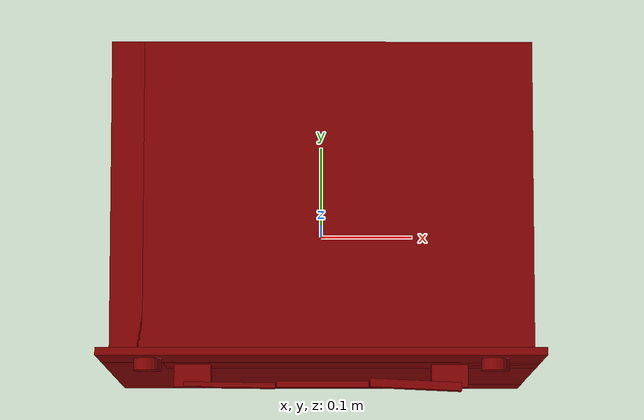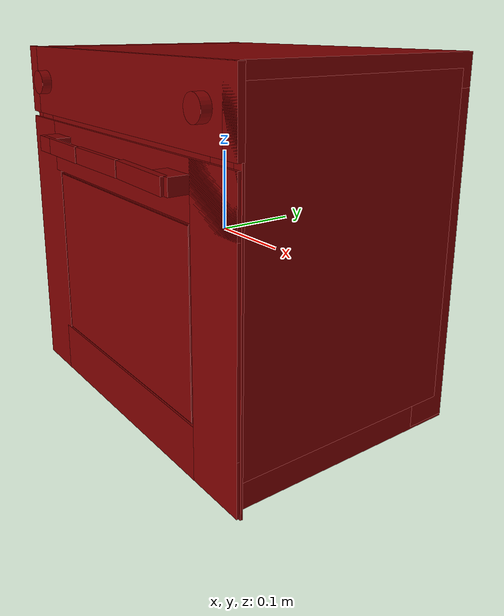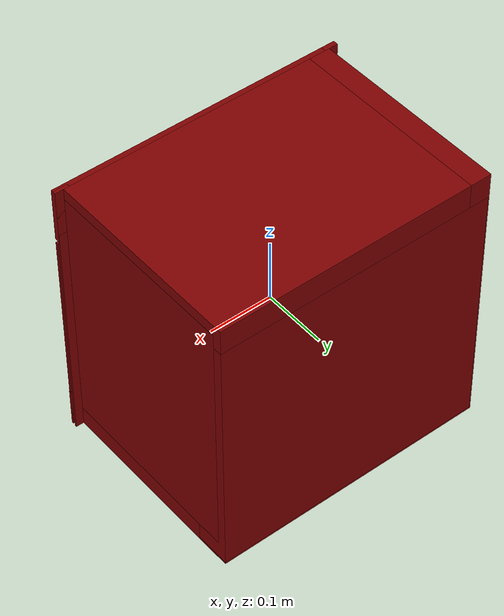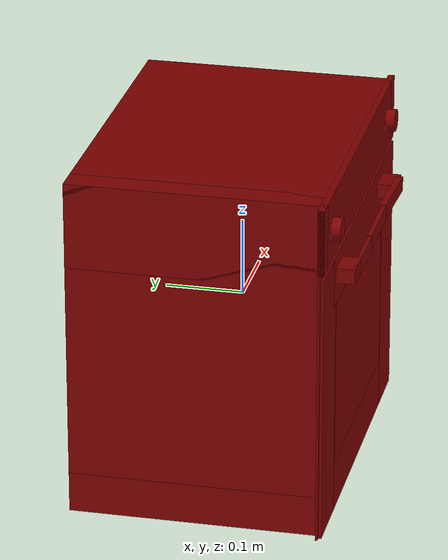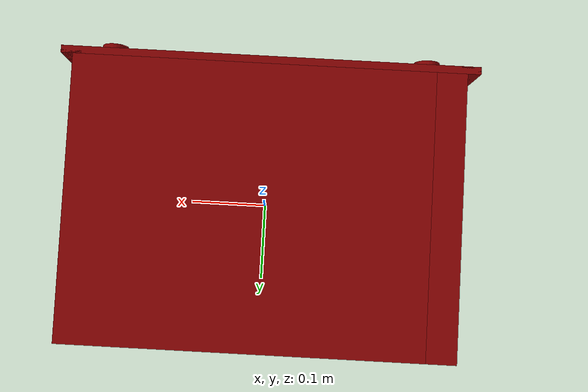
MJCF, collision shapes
<mujoco model="model">
  <compiler angle="radian"/>
  <asset>
    <mesh file="visuals/Body001.obj" name="Body001_vis"/>
    <mesh file="visuals/Door001.obj" name="Door001_vis"/>
    <mesh file="visuals/Door001_Clear.obj" name="Door001_Clear_vis"/>
    <mesh file="visuals/Knob001.obj" name="Knob001_vis"/>
    <mesh file="visuals/Knob002.obj" name="Knob002_vis"/>
    <mesh file="visuals/Shelf001.obj" name="Shelf001_vis"/>
    <mesh file="visuals/Shelf002.obj" name="Shelf002_vis"/>
    <texture file="visuals/T_BC001.png" name="Body001_material" type="2d"/>
    <material name="Body001_material" rgba="1 1 1 1.0" texture="Body001_material" shininess="0.4472135901451111" specular="2"/>
    <texture file="visuals/T_BC001.png" name="Door001_material" type="2d"/>
    <material name="Door001_material" rgba="1 1 1 1.0" texture="Door001_material" shininess="0.4472135901451111" specular="2"/>
    <texture file="visuals/T_BC001.png" name="Door001_Clear_material" type="2d"/>
    <material name="Door001_Clear_material" rgba="1 1 1 0.7562724351882935" texture="Door001_Clear_material" shininess="0.4472135901451111" specular="0.3103448502657381"/>
    <texture file="visuals/T_BC001.png" name="Knob001_material" type="2d"/>
    <material name="Knob001_material" rgba="1 1 1 1.0" texture="Knob001_material" shininess="0.4472135901451111" specular="0.3103448502657381"/>
    <texture file="visuals/T_BC001.png" name="Knob002_material" type="2d"/>
    <material name="Knob002_material" rgba="1 1 1 1.0" texture="Knob002_material" shininess="0.4472135901451111" specular="0.3103448502657381"/>
    <texture file="visuals/T_BC001.png" name="Shelf001_material" type="2d"/>
    <material name="Shelf001_material" rgba="1 1 1 1.0" texture="Shelf001_material" shininess="0.4472135901451111" specular="5"/>
    <texture file="visuals/T_BC001.png" name="Shelf002_material" type="2d"/>
    <material name="Shelf002_material" rgba="1 1 1 1.0" texture="Shelf002_material" shininess="0.4472135901451111" specular="5"/>
  </asset>
  <default>
    <default class="visual">
      <geom conaffinity="0" contype="0" group="1" type="mesh"/>
    </default>
    <default class="collision">
      <geom group="0" rgba="0.5 0 0 0.5"/>
    </default>
    <default class="spawn">
      <geom group="0" rgba="1 1 1 0.5" contype="0" conaffinity="0"/>
      <site group="0" rgba="1 1 1 0.5"/>
    </default>
    <default class="region">
      <geom group="1" conaffinity="0" contype="0" rgba="0 1 0 0"/>
    </default>
  </default>
  <worldbody>
    <body>
      <body name="object">
        <geom mesh="Body001_vis" type="mesh" solimp="0.998 0.998 0.001" solref="0.001 1" density="100" friction="0.95 0.3 0.1" class="visual" material="Body001_material"/>
        <geom class="collision" type="box" pos="0.000481 0.014818 -0.195920" size="0.21786123514175415 0.16036567091941833 0.026383837684988976" quat="1.0 0.0 0.0 0.0"/>
        <geom class="collision" type="box" pos="0.000481 0.014818 0.166861" size="0.21786123514175415 0.16036497056484222 0.055442389100790024" quat="1.0 0.0 0.0 0.0"/>
        <geom class="collision" type="box" pos="0.001381 0.147649 -0.018107" size="0.21696160733699799 0.027534758672118187 0.20136216282844543" quat="1.0 0.0 0.0 0.0"/>
        <geom class="collision" type="box" pos="0.200536 0.007853 0.006640" size="0.01780678518116474 0.1534004956483841 0.198159858584404" quat="1.0 0.0 0.0 0.0"/>
        <geom class="collision" type="box" pos="-0.200482 0.014818 0.000000" size="0.016898097470402718 0.1603657305240631 0.22230353951454163" quat="1.0 0.0 0.0 0.0"/>
        <geom class="collision" type="box" pos="-0.000254 -0.146839 0.179870" size="0.2318679541349411 0.0041035874746739864 0.042434122413396835" quat="1.0 0.0 0.0 0.0"/>
        <geom class="collision" type="box" pos="-0.221275 -0.146839 0.179870" size="0.010847033932805061 0.004103589337319136 0.042434122413396835" quat="1.0 0.0 0.0 0.0"/>
        <geom class="collision" type="box" pos="0.220378 -0.146839 0.179870" size="0.011236577294766903 0.004103591199964285 0.042434122413396835" quat="1.0 0.0 0.0 0.0"/>
        <geom class="collision" type="box" pos="0.220051 -0.144141 -0.036655" size="0.01090974360704422 0.001406339113600552 0.1853591799736023" quat="1.0 0.0 0.0 0.0"/>
        <geom class="collision" type="box" pos="-0.219866 -0.144141 -0.036655" size="0.01090974360704422 0.0014063393464311957 0.1853591799736023" quat="1.0 0.0 0.0 0.0"/>
        <body name="Door001">
          <joint axis="1.0 0.0 0.0" pos="-0.000299 -0.149308 -0.220501" limited="true" name="Door001_joint" range="0.0 1.15" type="hinge" damping="5" frictionloss="1" armature=".01" stiffness="0.05" springref="-0.1"/>
          <geom mesh="Door001_vis" type="mesh" solimp="0.998 0.998 0.001" solref="0.001 1" density="100" friction="0.95 0.3 0.1" class="visual" material="Door001_material"/>
          <geom class="collision" type="box" pos="-0.097983 -0.172834 0.105864" size="0.0487707294523716 0.0025828531943261623 0.009635950438678265" quat="0.9999805688858032 0.0 -0.0 -0.006229714956134558"/>
          <geom class="collision" type="box" pos="0.100252 -0.172441 0.105864" size="0.04882834851741791 0.004376294557005167 0.00963595137000084" quat="0.9997330904006958 0.0 -0.0 -0.02310282737016678"/>
          <geom class="collision" type="box" pos="0.001050 -0.172154 0.105864" size="0.048756614327430725 0.003030058229342103 0.00963595137000084" quat="1.0 0.0 0.0 0.0"/>
          <geom class="collision" type="box" pos="-0.136938 -0.162183 0.105864" size="0.01957026682794094 0.01288915891200304 0.009635921567678452" quat="1.0 0.0 0.0 0.0"/>
          <geom class="collision" type="box" pos="0.136118 -0.163308 0.105864" size="0.019453901797533035 0.011863337829709053 0.009635918773710728" quat="1.0 0.0 0.0 0.0"/>
          <geom class="collision" type="box" pos="-0.193693 -0.149141 -0.043532" size="0.0384288989007473 0.0018013834487646818 0.17441776394844055" quat="1.0 0.0 0.0 0.0"/>
          <geom class="collision" type="box" pos="0.193256 -0.149141 -0.043532" size="0.0384288989007473 0.0018013825174421072 0.17441776394844055" quat="1.0 0.0 0.0 0.0"/>
          <geom class="collision" type="box" pos="0.032302 -0.149141 0.098949" size="0.19938355684280396 0.0018013815861195326 0.03193708509206772" quat="1.0 0.0 0.0 0.0"/>
          <geom class="collision" type="box" pos="0.032738 -0.149141 -0.185705" size="0.19938355684280396 0.0018013805383816361 0.032244838774204254" quat="1.0 0.0 0.0 0.0"/>
          <geom class="collision" type="box" pos="-0.000475 -0.149141 -0.043107" size="0.15161040425300598 0.0018013796070590615 0.10714123398065567" quat="1.0 0.0 0.0 0.0"/>
          <body name="Door001_Clear">
            <geom mesh="Door001_Clear_vis" type="mesh" solimp="0.998 0.998 0.001" solref="0.001 1" density="100" friction="0.95 0.3 0.1" class="visual" material="Door001_Clear_material"/>
            <geom class="collision" type="box" pos="-0.000859 -0.148667 -0.043332" size="0.1520240604877472 0.001343670068308711 0.10845881700515747" quat="1.0 0.0 0.0 0.0"/>
          </body>
        </body>
        <body name="Knob001">
          <joint axis="0.0 1.0 0.0" pos="-0.180147 -0.160576 0.179097" limited="true" name="Knob001_joint" range="0.0 5.096361415823442" type="hinge" damping="0.05" armature="0.001"/>
          <geom mesh="Knob001_vis" type="mesh" solimp="0.998 0.998 0.001" solref="0.001 1" density="100" friction="0.95 0.3 0.1" class="visual" material="Knob001_material"/>
          <geom class="collision" type="cylinder" pos="-0.180273 -0.157186 0.178873" size="0.014560258947312832 0.0060626002959907055" quat="0.7071067094802856 0.7071068286895752 0.0 0.0"/>
        </body>
        <body name="Knob002">
          <joint axis="0.0 -1.0 0.0" pos="0.180246 -0.160569 0.179843" limited="true" name="Knob002_joint" range="-1.0471975511965976 3.141592653589793" type="hinge" damping="0.05" armature="0.001"/>
          <geom mesh="Knob002_vis" type="mesh" solimp="0.998 0.998 0.001" solref="0.001 1" density="100" friction="0.95 0.3 0.1" class="visual" material="Knob002_material"/>
          <geom class="collision" type="cylinder" pos="0.180386 -0.157186 0.180103" size="0.014560258947312832 0.0060626002959907055" quat="0.7071067094802856 0.7071068286895752 0.0 0.0"/>
        </body>
        <body name="Shelf001">
          <joint axis="0.0 -1.0 0.0" pos="0.001739 -0.006551 -0.090752" limited="true" name="Shelf001_joint" range="0.0 0.15" type="slide" damping="1" frictionloss="1" armature=".01" stiffness="0.05"/>
          <geom mesh="Shelf001_vis" type="mesh" solimp="0.998 0.998 0.001" solref="0.001 1" density="100" friction="0.95 0.3 0.1" class="visual" material="Shelf001_material"/>
          <geom class="collision" type="box" pos="-0.000379 -0.005369 -0.093415" size="0.15719912946224213 0.11320768296718597 0.0028579707723110914" quat="1.0 0.0 0.0 0.0"/>
          <geom class="collision" type="box" pos="0.171002 -0.004984 -0.083480" size="0.006573982071131468 0.11217103153467178 0.0016717874677851796" quat="1.0 0.0 0.0 0.0"/>
          <geom class="collision" type="box" pos="0.161391 -0.004984 -0.088838" size="0.006573961582034826 0.11217070370912552 0.0016717874677851796" quat="0.9005489349365234 0.0 -0.4347546398639679 0.0"/>
          <geom class="collision" type="box" pos="0.159070 -0.004984 -0.099363" size="0.006573961582034826 0.11217070370912552 0.0016717874677851796" quat="0.8728246092796326 0.0 0.4880339801311493 0.0"/>
          <geom class="collision" type="box" pos="-0.172757 -0.004984 -0.083480" size="0.006573978811502457 0.11217097193002701 0.0016717874677851796" quat="1.0 0.0 0.0 0.0"/>
          <geom class="collision" type="box" pos="-0.162739 -0.004984 -0.088838" size="0.006573961582034826 0.11217070370912552 0.0016717874677851796" quat="0.9005488157272339 0.0 0.4347549378871918 0.0"/>
          <geom class="collision" type="box" pos="-0.160459 -0.004984 -0.099363" size="0.006573961582034826 0.11217070370912552 0.0016717874677851796" quat="0.8728245496749878 0.0 -0.48803412914276123 0.0"/>
        </body>
        <body name="Shelf002">
          <joint axis="0.0 -1.0 0.0" pos="0.001833 -0.006551 0.010684" limited="true" name="Shelf002_joint" range="0.0 0.15" type="slide" damping="1" frictionloss="1" armature=".01" stiffness="0.05"/>
          <geom mesh="Shelf002_vis" type="mesh" solimp="0.998 0.998 0.001" solref="0.001 1" density="100" friction="0.95 0.3 0.1" class="visual" material="Shelf002_material"/>
          <geom class="collision" type="box" pos="-0.000379 -0.005369 0.008011" size="0.15719912946224213 0.11320768296718597 0.0028579707723110914" quat="1.0 0.0 0.0 0.0"/>
          <geom class="collision" type="box" pos="0.171002 -0.004984 0.017946" size="0.006573971826583147 0.11217086762189865 0.0016717874677851796" quat="1.0 0.0 0.0 0.0"/>
          <geom class="collision" type="box" pos="0.161391 -0.004984 0.012588" size="0.006573961582034826 0.11217070370912552 0.0016717874677851796" quat="0.9005489349365234 0.0 -0.4347546398639679 0.0"/>
          <geom class="collision" type="box" pos="0.159070 -0.004984 0.002063" size="0.006573961582034826 0.11217070370912552 0.0016717874677851796" quat="0.8728246092796326 0.0 0.4880339801311493 0.0"/>
          <geom class="collision" type="box" pos="-0.172757 -0.004984 0.017946" size="0.006573968566954136 0.11217080801725388 0.0016717874677851796" quat="1.0 0.0 0.0 0.0"/>
          <geom class="collision" type="box" pos="-0.162739 -0.004984 0.012588" size="0.006573961582034826 0.11217070370912552 0.0016717874677851796" quat="0.9005488157272339 0.0 0.4347549378871918 0.0"/>
          <geom class="collision" type="box" pos="-0.160459 -0.004984 0.002063" size="0.006573961582034826 0.11217070370912552 0.0016717874677851796" quat="0.8728245496749878 0.0 -0.48803412914276123 0.0"/>
        </body>
        <geom class="region" name="reg_main" type="box" pos="-0.0002540000000000042 0.012121000000000007 0.0" size="0.231868 0.163063 0.222304"/>
        <geom class="region" name="reg_int" type="box" pos="0.0001769999999999966 -0.015799999999999995 -0.027846499999999996" size="0.17757699999999998 0.12922499999999998 0.1396075"/>
      </body>
    </body>
  </worldbody>
  <actuator>
    <motor name="Door001_joint_actuator" joint="Door001_joint" gear="50"/>
    <motor name="Knob001_joint_actuator" joint="Knob001_joint" gear="50"/>
    <motor name="Knob002_joint_actuator" joint="Knob002_joint" gear="50"/>
    <motor name="Shelf001_joint_actuator" joint="Shelf001_joint" gear="50"/>
    <motor name="Shelf002_joint_actuator" joint="Shelf002_joint" gear="50"/>
  </actuator>
</mujoco>
